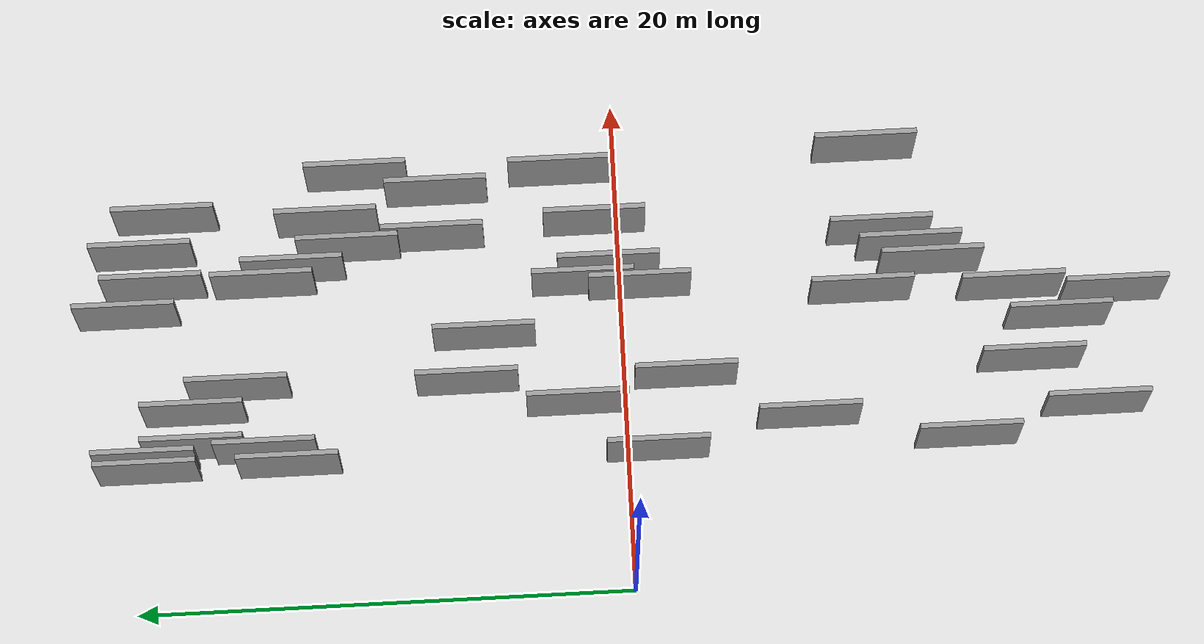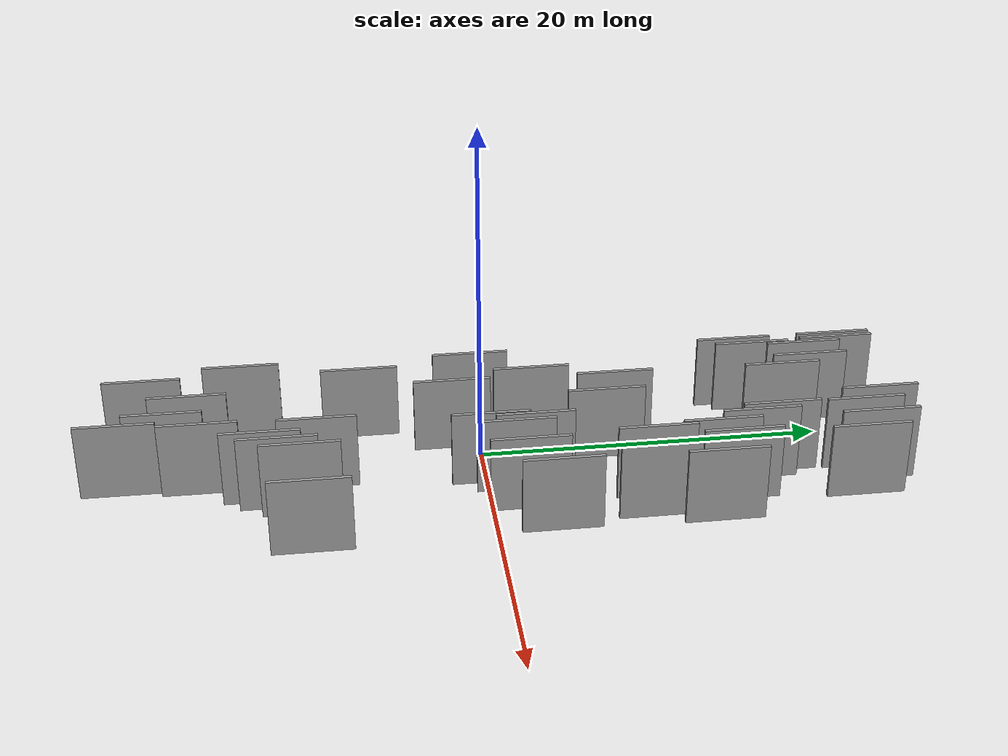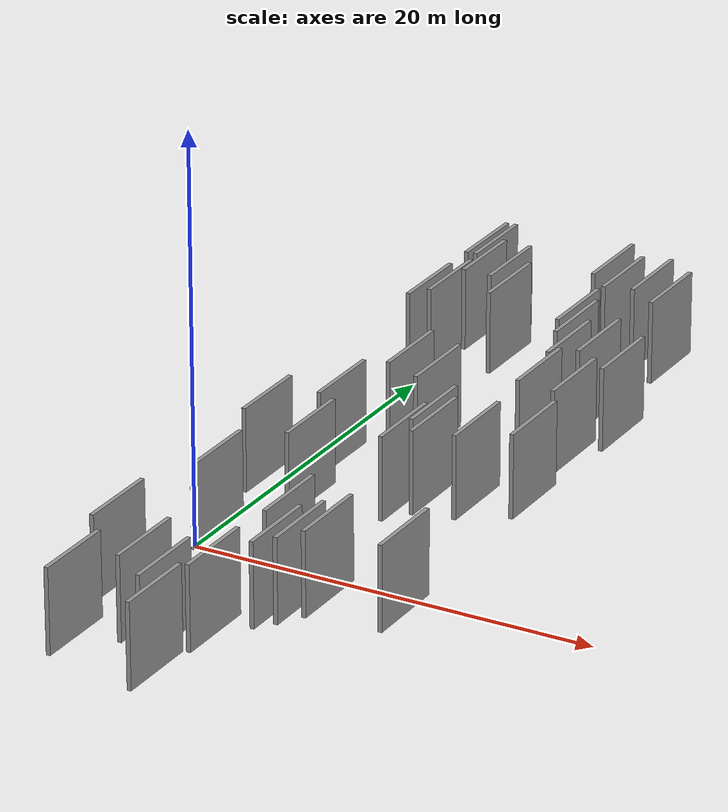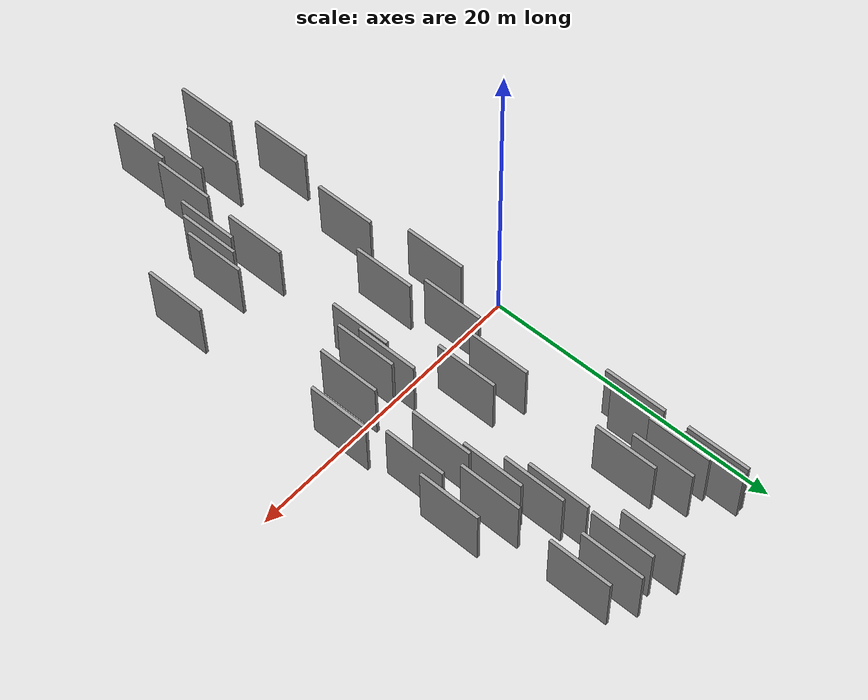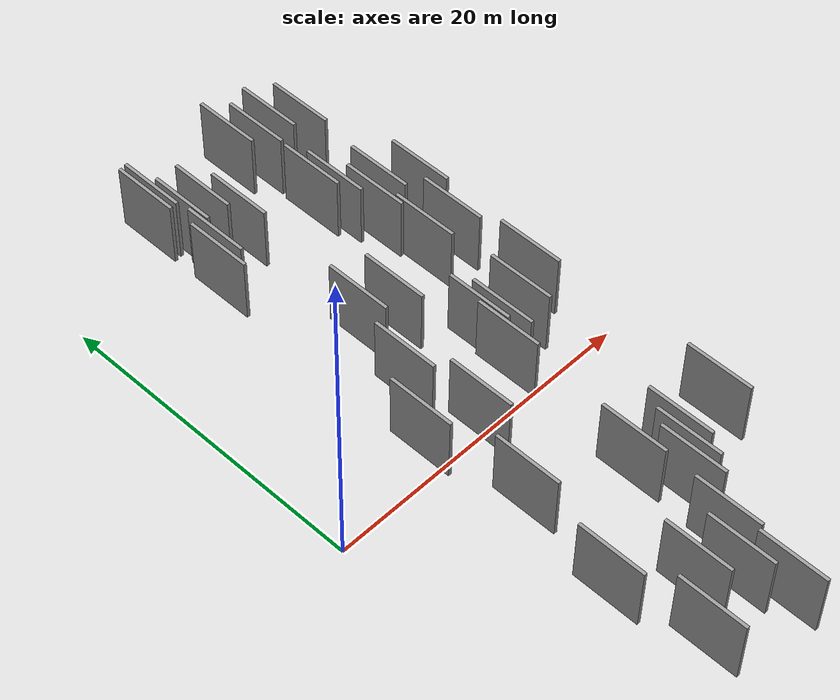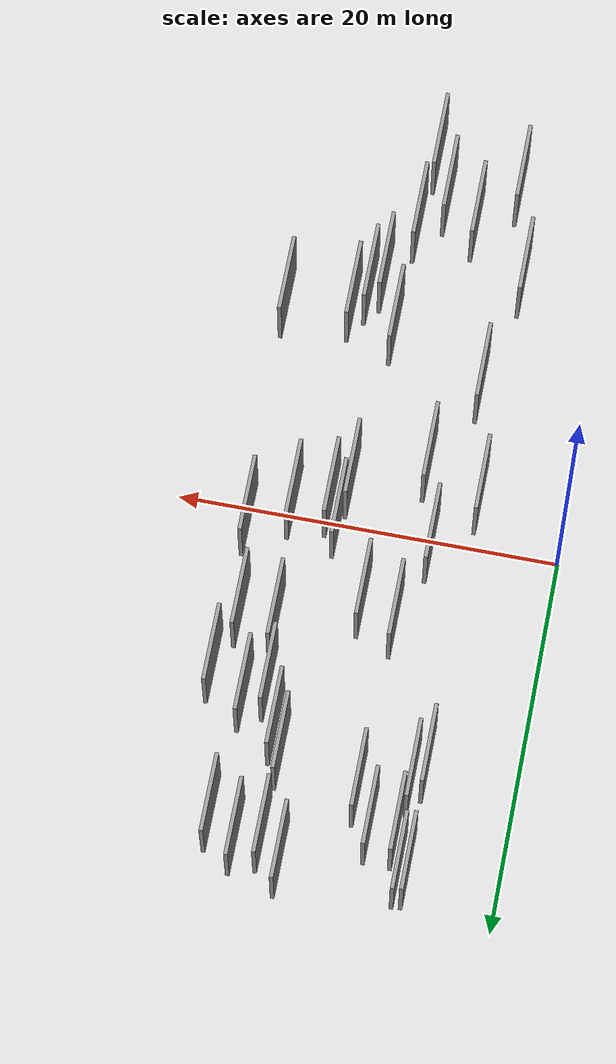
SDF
<sdf version="1.6">
 <world name="default">
  <scene>
   <sky><clouds><speed>12</speed></clouds></sky>
   <ambient>0.4 0.4 0.4 1</ambient>
   <background>0.7 0.7 0.7 1</background>
   <shadows>1</shadows>
  </scene>
  <gravity>0 0 -9.8066</gravity>
  <magnetic_field>6e-06 2.3e-05 -4.2e-05</magnetic_field>
  <physics default="0" name="default_physics" type="ode">
   <ode>
    <solver>
     <type>quick</type>
     <iters>10</iters>
     <sor>1.0</sor>
     <use_dynamic_moi_rescaling>0</use_dynamic_moi_rescaling>
    </solver>
    <constraints>
     <cfm>0</cfm>
     <erp>0.2</erp>
     <contact_max_correcting_vel>100</contact_max_correcting_vel>
     <contact_surface_layer>0.001</contact_surface_layer>
    </constraints>
   </ode>
   <max_step_size>0.004</max_step_size>
   <real_time_factor>1</real_time_factor>
   <real_time_update_rate>250</real_time_update_rate>
  </physics>
  <light name="sun" type="directional">
   <pose>0 0 10 0 0 0</pose>
   <diffuse>0.8 0.8 0.8 1</diffuse>
   <specular>0.2 0.2 0.2 1</specular>
   <attenuation>
    <range>1000</range>
    <constant>0.9</constant>
    <linear>0.01</linear>
    <quadratic>0.001</quadratic>
   </attenuation>
   <direction>-0.5 0.1 -0.9</direction>
  </light>
  <model name="grey_wall_1">
   <static>1</static>
   <pose>10.2005 -15.1687 5.0 0.000000 0.000000 1.570796</pose>
   <link name="link">
    <pose>0 0 2.00 0 0 0</pose>
    <collision name="collision"><geometry><box><size>4.00 0.2 4.00</size></box></geometry></collision>
    <visual name="visual">
     <cast_shadows>0</cast_shadows>
     <geometry><box><size>4.00 0.2 4.00</size></box></geometry>
     <material>
      <script>
       <uri>model://grey_wall/materials/scripts</uri>
       <uri>model://grey_wall/materials/textures</uri>
       <name>vrc/grey_wall</name>
      </script>
     </material>
    </visual>
   </link>
  </model>
  <model name="grey_wall_2">
   <static>1</static>
   <pose>6.7532 16.9944 5.0 0.000000 0.000000 1.570796</pose>
   <link name="link">
    <pose>0 0 2.00 0 0 0</pose>
    <collision name="collision"><geometry><box><size>4.00 0.2 4.00</size></box></geometry></collision>
    <visual name="visual">
     <cast_shadows>0</cast_shadows>
     <geometry><box><size>4.00 0.2 4.00</size></box></geometry>
     <material>
      <script>
       <uri>model://grey_wall/materials/scripts</uri>
       <uri>model://grey_wall/materials/textures</uri>
       <name>vrc/grey_wall</name>
      </script>
     </material>
    </visual>
   </link>
  </model>
  <model name="grey_wall_3">
   <static>1</static>
   <pose>11.2516 1.5689 5.0 0.000000 0.000000 1.570796</pose>
   <link name="link">
    <pose>0 0 2.00 0 0 0</pose>
    <collision name="collision"><geometry><box><size>4.00 0.2 4.00</size></box></geometry></collision>
    <visual name="visual">
     <cast_shadows>0</cast_shadows>
     <geometry><box><size>4.00 0.2 4.00</size></box></geometry>
     <material>
      <script>
       <uri>model://grey_wall/materials/scripts</uri>
       <uri>model://grey_wall/materials/textures</uri>
       <name>vrc/grey_wall</name>
      </script>
     </material>
    </visual>
   </link>
  </model>
  <model name="grey_wall_4">
   <static>1</static>
   <pose>16.1217 -9.7748 5.0 0.000000 0.000000 1.570796</pose>
   <link name="link">
    <pose>0 0 2.00 0 0 0</pose>
    <collision name="collision"><geometry><box><size>4.00 0.2 4.00</size></box></geometry></collision>
    <visual name="visual">
     <cast_shadows>0</cast_shadows>
     <geometry><box><size>4.00 0.2 4.00</size></box></geometry>
     <material>
      <script>
       <uri>model://grey_wall/materials/scripts</uri>
       <uri>model://grey_wall/materials/textures</uri>
       <name>vrc/grey_wall</name>
      </script>
     </material>
    </visual>
   </link>
  </model>
  <model name="grey_wall_5">
   <static>1</static>
   <pose>15.7666 2.2846 5.0 0.000000 0.000000 1.570796</pose>
   <link name="link">
    <pose>0 0 2.00 0 0 0</pose>
    <collision name="collision"><geometry><box><size>4.00 0.2 4.00</size></box></geometry></collision>
    <visual name="visual">
     <cast_shadows>0</cast_shadows>
     <geometry><box><size>4.00 0.2 4.00</size></box></geometry>
     <material>
      <script>
       <uri>model://grey_wall/materials/scripts</uri>
       <uri>model://grey_wall/materials/textures</uri>
       <name>vrc/grey_wall</name>
      </script>
     </material>
    </visual>
   </link>
  </model>
  <model name="grey_wall_6">
   <static>1</static>
   <pose>13.3416 7.3728 5.0 0.000000 0.000000 1.570796</pose>
   <link name="link">
    <pose>0 0 2.00 0 0 0</pose>
    <collision name="collision"><geometry><box><size>4.00 0.2 4.00</size></box></geometry></collision>
    <visual name="visual">
     <cast_shadows>0</cast_shadows>
     <geometry><box><size>4.00 0.2 4.00</size></box></geometry>
     <material>
      <script>
       <uri>model://grey_wall/materials/scripts</uri>
       <uri>model://grey_wall/materials/textures</uri>
       <name>vrc/grey_wall</name>
      </script>
     </material>
    </visual>
   </link>
  </model>
  <model name="grey_wall_7">
   <static>1</static>
   <pose>4.9559 18.9395 5.0 0.000000 0.000000 1.570796</pose>
   <link name="link">
    <pose>0 0 2.00 0 0 0</pose>
    <collision name="collision"><geometry><box><size>4.00 0.2 4.00</size></box></geometry></collision>
    <visual name="visual">
     <cast_shadows>0</cast_shadows>
     <geometry><box><size>4.00 0.2 4.00</size></box></geometry>
     <material>
      <script>
       <uri>model://grey_wall/materials/scripts</uri>
       <uri>model://grey_wall/materials/textures</uri>
       <name>vrc/grey_wall</name>
      </script>
     </material>
    </visual>
   </link>
  </model>
  <model name="grey_wall_8">
   <static>1</static>
   <pose>8.9436 -16.9515 5.0 0.000000 0.000000 1.570796</pose>
   <link name="link">
    <pose>0 0 2.00 0 0 0</pose>
    <collision name="collision"><geometry><box><size>4.00 0.2 4.00</size></box></geometry></collision>
    <visual name="visual">
     <cast_shadows>0</cast_shadows>
     <geometry><box><size>4.00 0.2 4.00</size></box></geometry>
     <material>
      <script>
       <uri>model://grey_wall/materials/scripts</uri>
       <uri>model://grey_wall/materials/textures</uri>
       <name>vrc/grey_wall</name>
      </script>
     </material>
    </visual>
   </link>
  </model>
  <model name="grey_wall_9">
   <static>1</static>
   <pose>4.5110 18.8897 5.0 0.000000 0.000000 1.570796</pose>
   <link name="link">
    <pose>0 0 2.00 0 0 0</pose>
    <collision name="collision"><geometry><box><size>4.00 0.2 4.00</size></box></geometry></collision>
    <visual name="visual">
     <cast_shadows>0</cast_shadows>
     <geometry><box><size>4.00 0.2 4.00</size></box></geometry>
     <material>
      <script>
       <uri>model://grey_wall/materials/scripts</uri>
       <uri>model://grey_wall/materials/textures</uri>
       <name>vrc/grey_wall</name>
      </script>
     </material>
    </visual>
   </link>
  </model>
  <model name="grey_wall_10">
   <static>1</static>
   <pose>10.9849 -0.6470 5.0 0.000000 0.000000 1.570796</pose>
   <link name="link">
    <pose>0 0 2.00 0 0 0</pose>
    <collision name="collision"><geometry><box><size>4.00 0.2 4.00</size></box></geometry></collision>
    <visual name="visual">
     <cast_shadows>0</cast_shadows>
     <geometry><box><size>4.00 0.2 4.00</size></box></geometry>
     <material>
      <script>
       <uri>model://grey_wall/materials/scripts</uri>
       <uri>model://grey_wall/materials/textures</uri>
       <name>vrc/grey_wall</name>
      </script>
     </material>
    </visual>
   </link>
  </model>
  <model name="grey_wall_11">
   <static>1</static>
   <pose>12.0299 -11.2718 5.0 0.000000 0.000000 1.570796</pose>
   <link name="link">
    <pose>0 0 2.00 0 0 0</pose>
    <collision name="collision"><geometry><box><size>4.00 0.2 4.00</size></box></geometry></collision>
    <visual name="visual">
     <cast_shadows>0</cast_shadows>
     <geometry><box><size>4.00 0.2 4.00</size></box></geometry>
     <material>
      <script>
       <uri>model://grey_wall/materials/scripts</uri>
       <uri>model://grey_wall/materials/textures</uri>
       <name>vrc/grey_wall</name>
      </script>
     </material>
    </visual>
   </link>
  </model>
  <model name="grey_wall_12">
   <static>1</static>
   <pose>12.7286 -10.1697 5.0 0.000000 0.000000 1.570796</pose>
   <link name="link">
    <pose>0 0 2.00 0 0 0</pose>
    <collision name="collision"><geometry><box><size>4.00 0.2 4.00</size></box></geometry></collision>
    <visual name="visual">
     <cast_shadows>0</cast_shadows>
     <geometry><box><size>4.00 0.2 4.00</size></box></geometry>
     <material>
      <script>
       <uri>model://grey_wall/materials/scripts</uri>
       <uri>model://grey_wall/materials/textures</uri>
       <name>vrc/grey_wall</name>
      </script>
     </material>
    </visual>
   </link>
  </model>
  <model name="grey_wall_13">
   <static>1</static>
   <pose>11.8707 18.4055 5.0 0.000000 0.000000 1.570796</pose>
   <link name="link">
    <pose>0 0 2.00 0 0 0</pose>
    <collision name="collision"><geometry><box><size>4.00 0.2 4.00</size></box></geometry></collision>
    <visual name="visual">
     <cast_shadows>0</cast_shadows>
     <geometry><box><size>4.00 0.2 4.00</size></box></geometry>
     <material>
      <script>
       <uri>model://grey_wall/materials/scripts</uri>
       <uri>model://grey_wall/materials/textures</uri>
       <name>vrc/grey_wall</name>
      </script>
     </material>
    </visual>
   </link>
  </model>
  <model name="grey_wall_14">
   <static>1</static>
   <pose>13.1699 18.7863 5.0 0.000000 0.000000 1.570796</pose>
   <link name="link">
    <pose>0 0 2.00 0 0 0</pose>
    <collision name="collision"><geometry><box><size>4.00 0.2 4.00</size></box></geometry></collision>
    <visual name="visual">
     <cast_shadows>0</cast_shadows>
     <geometry><box><size>4.00 0.2 4.00</size></box></geometry>
     <material>
      <script>
       <uri>model://grey_wall/materials/scripts</uri>
       <uri>model://grey_wall/materials/textures</uri>
       <name>vrc/grey_wall</name>
      </script>
     </material>
    </visual>
   </link>
  </model>
  <model name="grey_wall_15">
   <static>1</static>
   <pose>13.6700 1.0038 5.0 0.000000 0.000000 1.570796</pose>
   <link name="link">
    <pose>0 0 2.00 0 0 0</pose>
    <collision name="collision"><geometry><box><size>4.00 0.2 4.00</size></box></geometry></collision>
    <visual name="visual">
     <cast_shadows>0</cast_shadows>
     <geometry><box><size>4.00 0.2 4.00</size></box></geometry>
     <material>
      <script>
       <uri>model://grey_wall/materials/scripts</uri>
       <uri>model://grey_wall/materials/textures</uri>
       <name>vrc/grey_wall</name>
      </script>
     </material>
    </visual>
   </link>
  </model>
  <model name="grey_wall_16">
   <static>1</static>
   <pose>9.2551 5.5345 5.0 0.000000 0.000000 1.570796</pose>
   <link name="link">
    <pose>0 0 2.00 0 0 0</pose>
    <collision name="collision"><geometry><box><size>4.00 0.2 4.00</size></box></geometry></collision>
    <visual name="visual">
     <cast_shadows>0</cast_shadows>
     <geometry><box><size>4.00 0.2 4.00</size></box></geometry>
     <material>
      <script>
       <uri>model://grey_wall/materials/scripts</uri>
       <uri>model://grey_wall/materials/textures</uri>
       <name>vrc/grey_wall</name>
      </script>
     </material>
    </visual>
   </link>
  </model>
  <model name="grey_wall_17">
   <static>1</static>
   <pose>7.2999 -2.2638 5.0 0.000000 0.000000 1.570796</pose>
   <link name="link">
    <pose>0 0 2.00 0 0 0</pose>
    <collision name="collision"><geometry><box><size>4.00 0.2 4.00</size></box></geometry></collision>
    <visual name="visual">
     <cast_shadows>0</cast_shadows>
     <geometry><box><size>4.00 0.2 4.00</size></box></geometry>
     <material>
      <script>
       <uri>model://grey_wall/materials/scripts</uri>
       <uri>model://grey_wall/materials/textures</uri>
       <name>vrc/grey_wall</name>
      </script>
     </material>
    </visual>
   </link>
  </model>
  <model name="grey_wall_18">
   <static>1</static>
   <pose>12.3138 12.8911 5.0 0.000000 0.000000 1.570796</pose>
   <link name="link">
    <pose>0 0 2.00 0 0 0</pose>
    <collision name="collision"><geometry><box><size>4.00 0.2 4.00</size></box></geometry></collision>
    <visual name="visual">
     <cast_shadows>0</cast_shadows>
     <geometry><box><size>4.00 0.2 4.00</size></box></geometry>
     <material>
      <script>
       <uri>model://grey_wall/materials/scripts</uri>
       <uri>model://grey_wall/materials/textures</uri>
       <name>vrc/grey_wall</name>
      </script>
     </material>
    </visual>
   </link>
  </model>
  <model name="grey_wall_19">
   <static>1</static>
   <pose>7.4663 6.2818 5.0 0.000000 0.000000 1.570796</pose>
   <link name="link">
    <pose>0 0 2.00 0 0 0</pose>
    <collision name="collision"><geometry><box><size>4.00 0.2 4.00</size></box></geometry></collision>
    <visual name="visual">
     <cast_shadows>0</cast_shadows>
     <geometry><box><size>4.00 0.2 4.00</size></box></geometry>
     <material>
      <script>
       <uri>model://grey_wall/materials/scripts</uri>
       <uri>model://grey_wall/materials/textures</uri>
       <name>vrc/grey_wall</name>
      </script>
     </material>
    </visual>
   </link>
  </model>
  <model name="grey_wall_20">
   <static>1</static>
   <pose>7.2711 -15.7959 5.0 0.000000 0.000000 1.570796</pose>
   <link name="link">
    <pose>0 0 2.00 0 0 0</pose>
    <collision name="collision"><geometry><box><size>4.00 0.2 4.00</size></box></geometry></collision>
    <visual name="visual">
     <cast_shadows>0</cast_shadows>
     <geometry><box><size>4.00 0.2 4.00</size></box></geometry>
     <material>
      <script>
       <uri>model://grey_wall/materials/scripts</uri>
       <uri>model://grey_wall/materials/textures</uri>
       <name>vrc/grey_wall</name>
      </script>
     </material>
    </visual>
   </link>
  </model>
  <model name="grey_wall_21">
   <static>1</static>
   <pose>15.1887 7.1580 5.0 0.000000 0.000000 1.570796</pose>
   <link name="link">
    <pose>0 0 2.00 0 0 0</pose>
    <collision name="collision"><geometry><box><size>4.00 0.2 4.00</size></box></geometry></collision>
    <visual name="visual">
     <cast_shadows>0</cast_shadows>
     <geometry><box><size>4.00 0.2 4.00</size></box></geometry>
     <material>
      <script>
       <uri>model://grey_wall/materials/scripts</uri>
       <uri>model://grey_wall/materials/textures</uri>
       <name>vrc/grey_wall</name>
      </script>
     </material>
    </visual>
   </link>
  </model>
  <model name="grey_wall_22">
   <static>1</static>
   <pose>14.5763 17.8428 5.0 0.000000 0.000000 1.570796</pose>
   <link name="link">
    <pose>0 0 2.00 0 0 0</pose>
    <collision name="collision"><geometry><box><size>4.00 0.2 4.00</size></box></geometry></collision>
    <visual name="visual">
     <cast_shadows>0</cast_shadows>
     <geometry><box><size>4.00 0.2 4.00</size></box></geometry>
     <material>
      <script>
       <uri>model://grey_wall/materials/scripts</uri>
       <uri>model://grey_wall/materials/textures</uri>
       <name>vrc/grey_wall</name>
      </script>
     </material>
    </visual>
   </link>
  </model>
  <model name="grey_wall_23">
   <static>1</static>
   <pose>11.8285 0.5361 5.0 0.000000 0.000000 1.570796</pose>
   <link name="link">
    <pose>0 0 2.00 0 0 0</pose>
    <collision name="collision"><geometry><box><size>4.00 0.2 4.00</size></box></geometry></collision>
    <visual name="visual">
     <cast_shadows>0</cast_shadows>
     <geometry><box><size>4.00 0.2 4.00</size></box></geometry>
     <material>
      <script>
       <uri>model://grey_wall/materials/scripts</uri>
       <uri>model://grey_wall/materials/textures</uri>
       <name>vrc/grey_wall</name>
      </script>
     </material>
    </visual>
   </link>
  </model>
  <model name="grey_wall_24">
   <static>1</static>
   <pose>10.7839 19.4972 5.0 0.000000 0.000000 1.570796</pose>
   <link name="link">
    <pose>0 0 2.00 0 0 0</pose>
    <collision name="collision"><geometry><box><size>4.00 0.2 4.00</size></box></geometry></collision>
    <visual name="visual">
     <cast_shadows>0</cast_shadows>
     <geometry><box><size>4.00 0.2 4.00</size></box></geometry>
     <material>
      <script>
       <uri>model://grey_wall/materials/scripts</uri>
       <uri>model://grey_wall/materials/textures</uri>
       <name>vrc/grey_wall</name>
      </script>
     </material>
    </visual>
   </link>
  </model>
  <model name="grey_wall_25">
   <static>1</static>
   <pose>11.7766 14.0807 5.0 0.000000 0.000000 1.570796</pose>
   <link name="link">
    <pose>0 0 2.00 0 0 0</pose>
    <collision name="collision"><geometry><box><size>4.00 0.2 4.00</size></box></geometry></collision>
    <visual name="visual">
     <cast_shadows>0</cast_shadows>
     <geometry><box><size>4.00 0.2 4.00</size></box></geometry>
     <material>
      <script>
       <uri>model://grey_wall/materials/scripts</uri>
       <uri>model://grey_wall/materials/textures</uri>
       <name>vrc/grey_wall</name>
      </script>
     </material>
    </visual>
   </link>
  </model>
  <model name="grey_wall_26">
   <static>1</static>
   <pose>9.8635 -19.2016 5.0 0.000000 0.000000 1.570796</pose>
   <link name="link">
    <pose>0 0 2.00 0 0 0</pose>
    <collision name="collision"><geometry><box><size>4.00 0.2 4.00</size></box></geometry></collision>
    <visual name="visual">
     <cast_shadows>0</cast_shadows>
     <geometry><box><size>4.00 0.2 4.00</size></box></geometry>
     <material>
      <script>
       <uri>model://grey_wall/materials/scripts</uri>
       <uri>model://grey_wall/materials/textures</uri>
       <name>vrc/grey_wall</name>
      </script>
     </material>
    </visual>
   </link>
  </model>
  <model name="grey_wall_27">
   <static>1</static>
   <pose>6.4136 2.0030 5.0 0.000000 0.000000 1.570796</pose>
   <link name="link">
    <pose>0 0 2.00 0 0 0</pose>
    <collision name="collision"><geometry><box><size>4.00 0.2 4.00</size></box></geometry></collision>
    <visual name="visual">
     <cast_shadows>0</cast_shadows>
     <geometry><box><size>4.00 0.2 4.00</size></box></geometry>
     <material>
      <script>
       <uri>model://grey_wall/materials/scripts</uri>
       <uri>model://grey_wall/materials/textures</uri>
       <name>vrc/grey_wall</name>
      </script>
     </material>
    </visual>
   </link>
  </model>
  <model name="grey_wall_28">
   <static>1</static>
   <pose>4.4219 -1.0275 5.0 0.000000 0.000000 1.570796</pose>
   <link name="link">
    <pose>0 0 2.00 0 0 0</pose>
    <collision name="collision"><geometry><box><size>4.00 0.2 4.00</size></box></geometry></collision>
    <visual name="visual">
     <cast_shadows>0</cast_shadows>
     <geometry><box><size>4.00 0.2 4.00</size></box></geometry>
     <material>
      <script>
       <uri>model://grey_wall/materials/scripts</uri>
       <uri>model://grey_wall/materials/textures</uri>
       <name>vrc/grey_wall</name>
      </script>
     </material>
    </visual>
   </link>
  </model>
  <model name="grey_wall_29">
   <static>1</static>
   <pose>5.4434 -6.9847 5.0 0.000000 0.000000 1.570796</pose>
   <link name="link">
    <pose>0 0 2.00 0 0 0</pose>
    <collision name="collision"><geometry><box><size>4.00 0.2 4.00</size></box></geometry></collision>
    <visual name="visual">
     <cast_shadows>0</cast_shadows>
     <geometry><box><size>4.00 0.2 4.00</size></box></geometry>
     <material>
      <script>
       <uri>model://grey_wall/materials/scripts</uri>
       <uri>model://grey_wall/materials/textures</uri>
       <name>vrc/grey_wall</name>
      </script>
     </material>
    </visual>
   </link>
  </model>
  <model name="grey_wall_30">
   <static>1</static>
   <pose>13.0659 10.7047 5.0 0.000000 0.000000 1.570796</pose>
   <link name="link">
    <pose>0 0 2.00 0 0 0</pose>
    <collision name="collision"><geometry><box><size>4.00 0.2 4.00</size></box></geometry></collision>
    <visual name="visual">
     <cast_shadows>0</cast_shadows>
     <geometry><box><size>4.00 0.2 4.00</size></box></geometry>
     <material>
      <script>
       <uri>model://grey_wall/materials/scripts</uri>
       <uri>model://grey_wall/materials/textures</uri>
       <name>vrc/grey_wall</name>
      </script>
     </material>
    </visual>
   </link>
  </model>
  <model name="grey_wall_31">
   <static>1</static>
   <pose>15.9806 10.2782 5.0 0.000000 0.000000 1.570796</pose>
   <link name="link">
    <pose>0 0 2.00 0 0 0</pose>
    <collision name="collision"><geometry><box><size>4.00 0.2 4.00</size></box></geometry></collision>
    <visual name="visual">
     <cast_shadows>0</cast_shadows>
     <geometry><box><size>4.00 0.2 4.00</size></box></geometry>
     <material>
      <script>
       <uri>model://grey_wall/materials/scripts</uri>
       <uri>model://grey_wall/materials/textures</uri>
       <name>vrc/grey_wall</name>
      </script>
     </material>
    </visual>
   </link>
  </model>
  <model name="grey_wall_32">
   <static>1</static>
   <pose>7.6550 15.2224 5.0 0.000000 0.000000 1.570796</pose>
   <link name="link">
    <pose>0 0 2.00 0 0 0</pose>
    <collision name="collision"><geometry><box><size>4.00 0.2 4.00</size></box></geometry></collision>
    <visual name="visual">
     <cast_shadows>0</cast_shadows>
     <geometry><box><size>4.00 0.2 4.00</size></box></geometry>
     <material>
      <script>
       <uri>model://grey_wall/materials/scripts</uri>
       <uri>model://grey_wall/materials/textures</uri>
       <name>vrc/grey_wall</name>
      </script>
     </material>
    </visual>
   </link>
  </model>
  <model name="grey_wall_33">
   <static>1</static>
   <pose>10.3585 -9.3064 5.0 0.000000 0.000000 1.570796</pose>
   <link name="link">
    <pose>0 0 2.00 0 0 0</pose>
    <collision name="collision"><geometry><box><size>4.00 0.2 4.00</size></box></geometry></collision>
    <visual name="visual">
     <cast_shadows>0</cast_shadows>
     <geometry><box><size>4.00 0.2 4.00</size></box></geometry>
     <material>
      <script>
       <uri>model://grey_wall/materials/scripts</uri>
       <uri>model://grey_wall/materials/textures</uri>
       <name>vrc/grey_wall</name>
      </script>
     </material>
    </visual>
   </link>
  </model>
  <model name="grey_wall_34">
   <static>1</static>
   <pose>5.3550 -18.1996 5.0 0.000000 0.000000 1.570796</pose>
   <link name="link">
    <pose>0 0 2.00 0 0 0</pose>
    <collision name="collision"><geometry><box><size>4.00 0.2 4.00</size></box></geometry></collision>
    <visual name="visual">
     <cast_shadows>0</cast_shadows>
     <geometry><box><size>4.00 0.2 4.00</size></box></geometry>
     <material>
      <script>
       <uri>model://grey_wall/materials/scripts</uri>
       <uri>model://grey_wall/materials/textures</uri>
       <name>vrc/grey_wall</name>
      </script>
     </material>
    </visual>
   </link>
  </model>
  <model name="grey_wall_35">
   <static>1</static>
   <pose>5.3908 17.0310 5.0 0.000000 0.000000 1.570796</pose>
   <link name="link">
    <pose>0 0 2.00 0 0 0</pose>
    <collision name="collision"><geometry><box><size>4.00 0.2 4.00</size></box></geometry></collision>
    <visual name="visual">
     <cast_shadows>0</cast_shadows>
     <geometry><box><size>4.00 0.2 4.00</size></box></geometry>
     <material>
      <script>
       <uri>model://grey_wall/materials/scripts</uri>
       <uri>model://grey_wall/materials/textures</uri>
       <name>vrc/grey_wall</name>
      </script>
     </material>
    </visual>
   </link>
  </model>
  <model name="grey_wall_36">
   <static>1</static>
   <pose>4.5207 13.3660 5.0 0.000000 0.000000 1.570796</pose>
   <link name="link">
    <pose>0 0 2.00 0 0 0</pose>
    <collision name="collision"><geometry><box><size>4.00 0.2 4.00</size></box></geometry></collision>
    <visual name="visual">
     <cast_shadows>0</cast_shadows>
     <geometry><box><size>4.00 0.2 4.00</size></box></geometry>
     <material>
      <script>
       <uri>model://grey_wall/materials/scripts</uri>
       <uri>model://grey_wall/materials/textures</uri>
       <name>vrc/grey_wall</name>
      </script>
     </material>
    </visual>
   </link>
  </model>
  <model name="grey_wall_37">
   <static>1</static>
   <pose>5.1254 14.2350 5.0 0.000000 0.000000 1.570796</pose>
   <link name="link">
    <pose>0 0 2.00 0 0 0</pose>
    <collision name="collision"><geometry><box><size>4.00 0.2 4.00</size></box></geometry></collision>
    <visual name="visual">
     <cast_shadows>0</cast_shadows>
     <geometry><box><size>4.00 0.2 4.00</size></box></geometry>
     <material>
      <script>
       <uri>model://grey_wall/materials/scripts</uri>
       <uri>model://grey_wall/materials/textures</uri>
       <name>vrc/grey_wall</name>
      </script>
     </material>
    </visual>
   </link>
  </model>
  <model name="grey_wall_38">
   <static>1</static>
   <pose>11.3799 -12.0893 5.0 0.000000 0.000000 1.570796</pose>
   <link name="link">
    <pose>0 0 2.00 0 0 0</pose>
    <collision name="collision"><geometry><box><size>4.00 0.2 4.00</size></box></geometry></collision>
    <visual name="visual">
     <cast_shadows>0</cast_shadows>
     <geometry><box><size>4.00 0.2 4.00</size></box></geometry>
     <material>
      <script>
       <uri>model://grey_wall/materials/scripts</uri>
       <uri>model://grey_wall/materials/textures</uri>
       <name>vrc/grey_wall</name>
      </script>
     </material>
    </visual>
   </link>
  </model>
  <model name="grey_wall_39">
   <static>1</static>
   <pose>14.1654 11.4954 5.0 0.000000 0.000000 1.570796</pose>
   <link name="link">
    <pose>0 0 2.00 0 0 0</pose>
    <collision name="collision"><geometry><box><size>4.00 0.2 4.00</size></box></geometry></collision>
    <visual name="visual">
     <cast_shadows>0</cast_shadows>
     <geometry><box><size>4.00 0.2 4.00</size></box></geometry>
     <material>
      <script>
       <uri>model://grey_wall/materials/scripts</uri>
       <uri>model://grey_wall/materials/textures</uri>
       <name>vrc/grey_wall</name>
      </script>
     </material>
    </visual>
   </link>
  </model>
  <model name="grey_wall_40">
   <static>1</static>
   <pose>4.3382 -13.1421 5.0 0.000000 0.000000 1.570796</pose>
   <link name="link">
    <pose>0 0 2.00 0 0 0</pose>
    <collision name="collision"><geometry><box><size>4.00 0.2 4.00</size></box></geometry></collision>
    <visual name="visual">
     <cast_shadows>0</cast_shadows>
     <geometry><box><size>4.00 0.2 4.00</size></box></geometry>
     <material>
      <script>
       <uri>model://grey_wall/materials/scripts</uri>
       <uri>model://grey_wall/materials/textures</uri>
       <name>vrc/grey_wall</name>
      </script>
     </material>
    </visual>
   </link>
  </model>
 </world>
</sdf>
